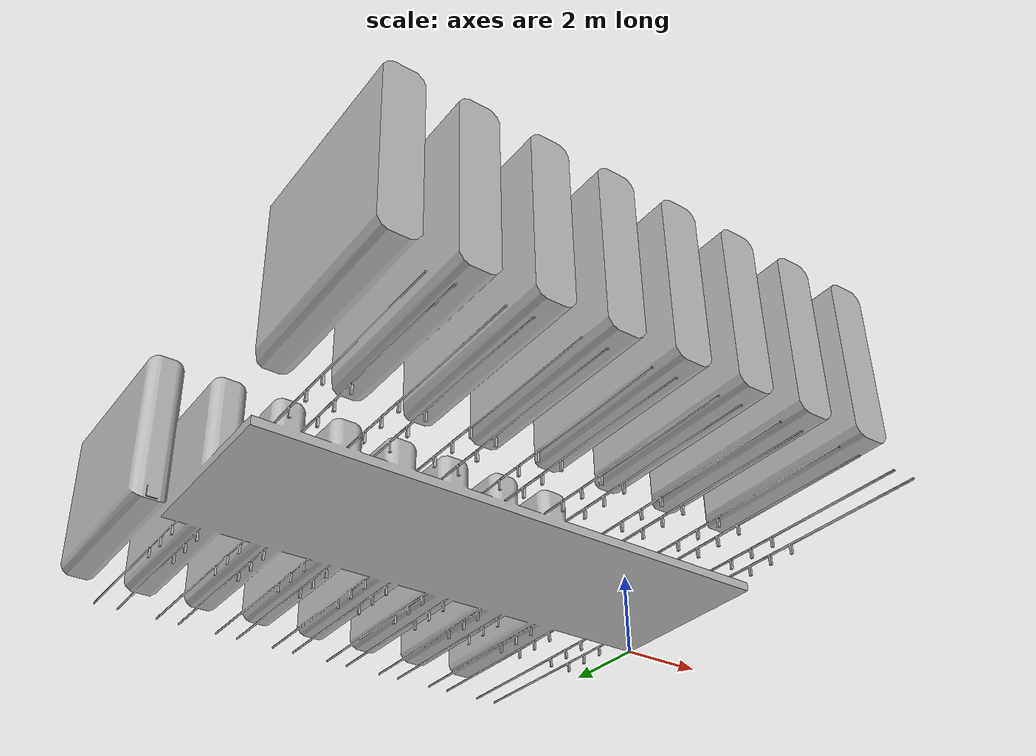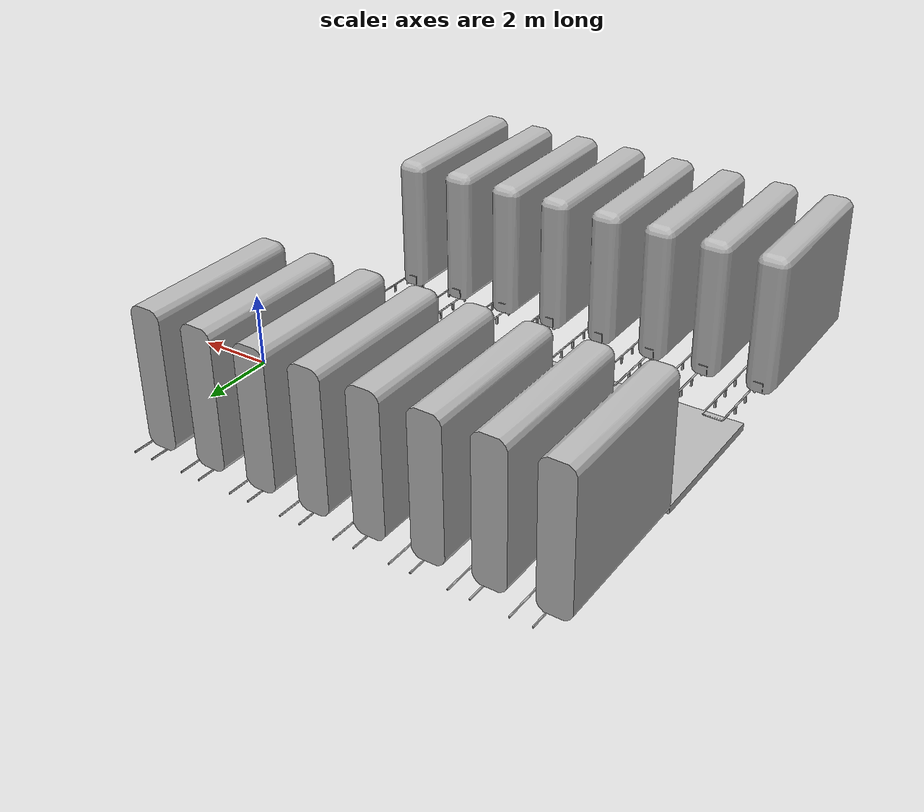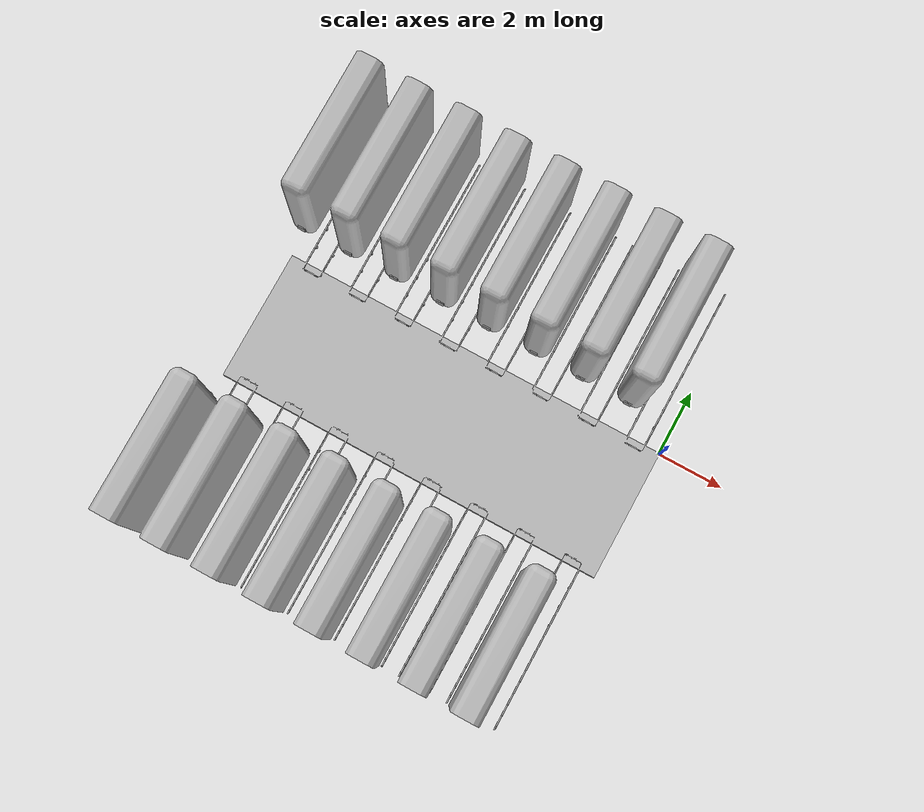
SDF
<?xml version="1.0" ?>
<sdf version="1.5">
  <model name="greenhouse_mini">
    <!-- Give the base link a unique name -->
    <pose>0 0 0 0 0 0</pose>
    <static>true</static>
    <link name="base">

      <visual name="base_visual">
        <geometry>
          <mesh>
            <uri>model://robot_simulation/models/greenhouse_mini/meshes/greenhouse_mini.obj</uri>
          </mesh>
        </geometry>
      </visual>

      <collision name="base_collision">
        <geometry>
          <mesh>
            <uri>model://robot_simulation/models/greenhouse_mini/meshes/greenhouse_mini.obj</uri>
          </mesh>
        </geometry>
      </collision>
    </link>

  </model>
</sdf>
